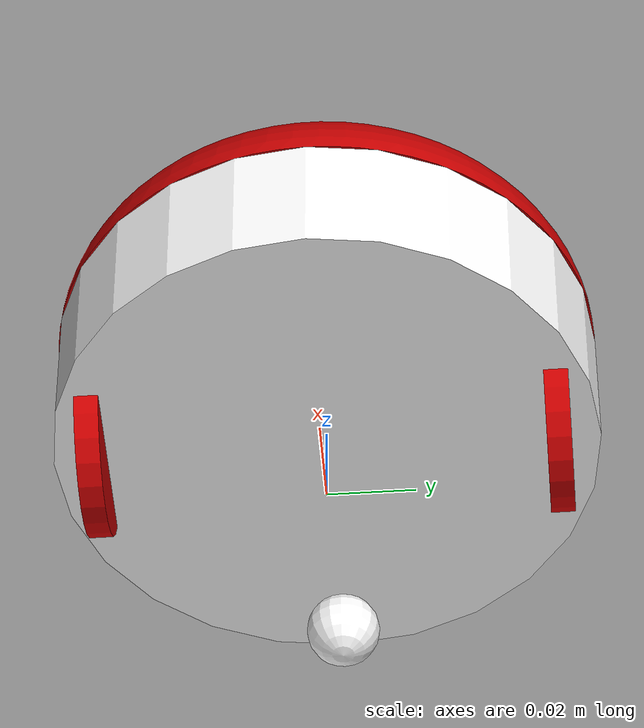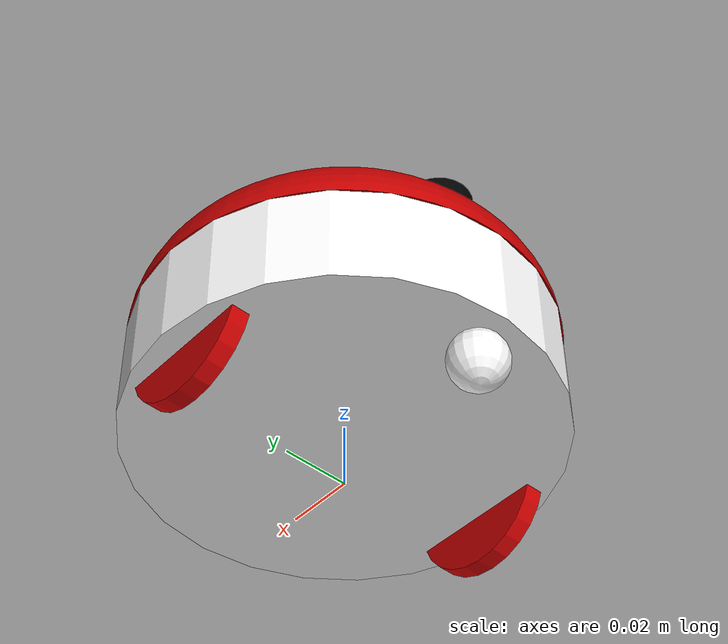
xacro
<?xml version="1.0" ?>
<robot name="makerspet_mini" xmlns:xacro="http://ros.org/wiki/xacro">
  <xacro:include filename="params.xacro" />
  <xacro:include filename="inertial.xacro" />
  <xacro:include filename="plugins.xacro" />
  <xacro:include filename="materials.xacro" />

  <link name="base_footprint"/>

  <joint name="base_joint" type="fixed">
    <parent link="base_footprint"/>
    <child link="base_link"/>
    <origin xyz="0 0 ${floor_clearance}" rpy="0 0 0"/>
  </joint>

  <link name="base_link">
    <visual>
      <origin xyz="0 0 ${lower_cylinder_height/2}" rpy="0 0 0"/>
      <geometry>
        <cylinder length="${lower_cylinder_height}" radius="${base_diameter/2}"/>
      </geometry>
      <material name="white"/>
    </visual>

    <collision>
      <origin xyz="0 0 ${lower_cylinder_height/2}" rpy="0 0 0"/>
      <geometry>
        <cylinder length="${lower_cylinder_height}" radius="${base_diameter/2}"/>
      </geometry>
    </collision>

    <xacro:solid_cylinder_inertia m="${lower_cylinder_mass}" r="${base_diameter/2}" h="${lower_cylinder_height}"/>
  </link>

  <joint name="caster_joint" type="fixed">
    <parent link="base_link"/>
    <child link="caster_link"/>
    <origin xyz="${caster_inset-base_diameter/2} 0 ${caster_diameter/2-floor_clearance}" rpy="0 0 0"/>
  </joint>

  <link name="caster_link">
    <visual>
      <origin xyz="0 0 0" rpy="0 0 0"/>
      <geometry>
        <sphere radius="${caster_diameter/2}"/>
      </geometry>
      <material name="white"/>
    </visual>

   <collision>
      <origin xyz="0 0 0" rpy="0 0 0"/>
      <geometry>
        <sphere radius="${caster_diameter/2}"/>
      </geometry>
    </collision>

    <xacro:solid_sphere_inertia m="${caster_mass}" r="${caster_diameter/2}"/>
  </link>

  <joint name="wheel_left_joint" type="continuous">
    <parent link="base_link"/>
    <child link="wheel_left_link"/>
    <origin xyz="0 ${wheel_base/2} ${wheel_diameter/2-floor_clearance}" rpy="-${pi/2} 0 0"/>
    <axis xyz="0 0 1">
      <limit>
        <effort>${motor_stall_torque}</effort>
      </limit>
    </axis>
  </joint>

  <link name="wheel_left_link">
    <visual>
      <origin xyz="0 0 0" rpy="0 0 0"/>
      <geometry>
        <cylinder length="${wheel_width}" radius="${wheel_diameter/2}"/>
      </geometry>
      <material name="red"/>
    </visual>

    <collision>
      <origin xyz="0 0 0" rpy="0 0 0"/>
      <geometry>
        <cylinder length="${wheel_width}" radius="${wheel_diameter/2}"/>
      </geometry>
    </collision>

    <xacro:solid_cylinder_inertia m="${wheel_mass}" r="${wheel_diameter/2}" h="${wheel_width}"/>
  </link>

  <joint name="wheel_right_joint" type="continuous">
    <parent link="base_link"/>
    <child link="wheel_right_link"/>
    <origin xyz="0 ${-wheel_base/2} ${wheel_diameter/2-floor_clearance}" rpy="-${pi/2} 0 0"/>
    <axis xyz="0 0 1">
      <limit>
        <effort>${motor_stall_torque}</effort>
      </limit>
    </axis>
  </joint>

  <link name="wheel_right_link">
    <visual>
      <origin xyz="0 0 0" rpy="0 0 0"/>
      <geometry>
        <cylinder length="${wheel_width}" radius="${wheel_diameter/2}"/>
      </geometry>
      <material name="red"/>
    </visual>

    <collision>
      <origin xyz="0 0 0" rpy="0 0 0"/>
      <geometry>
        <cylinder length="${wheel_width}" radius="${wheel_diameter/2}"/>
      </geometry>
    </collision>

    <xacro:solid_cylinder_inertia m="${wheel_mass}" r="${wheel_diameter/2}" h="${wheel_width}"/>
  </link>

  <joint name="scan_joint" type="fixed">
    <parent link="base_link"/>
    <child link="base_scan"/>
    <origin xyz="${lidar_center_offset} 0 ${lower_cylinder_height + laser_puck_offset}" rpy="0 -${pi} 0"/>
  </joint>

  <link name="base_scan">
    <visual>
      <origin xyz="0 0 0" rpy="0 0 0"/>
      <geometry>
        <cylinder length="${laser_puck_height}" radius="${laser_puck_diameter/2}"/>
      </geometry>
      <material name="black"/>
    </visual>

    <collision>
      <origin xyz="0 0 0" rpy="0 0 0"/>
      <geometry>
        <cylinder length="${laser_puck_height}" radius="${laser_puck_diameter/2}"/>
      </geometry>
    </collision>

    <xacro:solid_cylinder_inertia m="${laser_puck_mass}" r="${laser_puck_diameter/2}" h="${laser_puck_height}"/>
  </link>

  <joint name="scan_motor_joint" type="fixed">
    <parent link="base_scan"/>
    <child link="scan_motor"/>
    <origin xyz="${lidar_motor_x_offset} 0 ${lidar_motor_z_offset}" rpy="0 -${pi} 0"/>
  </joint>

  <link name="scan_motor">
    <visual>
      <origin xyz="0 0 0" rpy="0 0 0"/>
      <geometry>
        <cylinder length="${laser_motor_height}" radius="${laser_motor_diameter/2}"/>
      </geometry>
      <material name="black"/>
    </visual>

    <collision>
      <origin xyz="0 0 0" rpy="0 0 0"/>
      <geometry>
        <cylinder length="${laser_motor_height}" radius="${laser_motor_diameter/2}"/>
      </geometry>
    </collision>

    <xacro:solid_cylinder_inertia m="${laser_motor_mass}" r="${laser_motor_diameter/2}" h="${laser_motor_height}"/>
  </link>

  <joint name="head_joint" type="fixed">
    <parent link="base_link"/>
    <child link="head_link"/>
    <origin xyz="0 0 ${lower_cylinder_height}" rpy="0 0 0"/>
  </joint>

  <link name="head_link">
    <visual>
      <origin xyz="0 0 0" rpy="0 0 0"/>
      <geometry>
        <mesh filename="package://makerspet_mini/mesh/hemisphere.stl" scale="${0.001*base_diameter} ${0.001*base_diameter} ${0.001*head_height*2}"/>
      </geometry>
      <material name="red"/>
    </visual>

    <collision>
      <origin xyz="0 0 ${head_height/2}" rpy="0 0 0"/>
      <geometry>
        <cylinder length="${head_height}" radius="${base_diameter/2}"/>
      </geometry>
    </collision>

    <xacro:solid_semi_ellipsoid_inertia m="${head_mass}" x="${base_diameter/2}" y="${base_diameter/2}" z="${head_height}"/>
  </link>

</robot>

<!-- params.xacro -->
<robot xmlns:xacro="http://ros.org/wiki/xacro">
  <!-- ****************** ROBOT DIMENSIONS ****************** -->
  <!-- Units: meters, degrees, kg, N*m, m/s2 -->
  <xacro:property name="wheel_diameter" value="0.043"/>
  <xacro:property name="wheel_width" value="0.0055"/>
  <xacro:property name="caster_diameter" value="0.017"/>
  <!-- Caster center to base edge -->
  <xacro:property name="caster_inset" value="0.011"/>
  <xacro:property name="floor_clearance" value="0.0149"/>
  <xacro:property name="base_diameter" value="0.124"/>
  <xacro:property name="wheel_base" value="0.105043"/>
  <xacro:property name="lower_cylinder_height" value="0.032"/>
  <xacro:property name="laser_puck_height" value="0.016"/>
  <xacro:property name="laser_puck_diameter" value="0.06"/>
  <xacro:property name="laser_puck_offset" value="0.0384"/>
  <xacro:property name="laser_motor_diameter" value="0.02"/>
  <xacro:property name="lidar_motor_x_offset" value="0.04"/>
  <xacro:property name="lidar_motor_z_offset" value="0.012"/>
  <xacro:property name="laser_motor_height" value="0.01"/>
  <xacro:property name="head_height" value="0.0388"/>
  <xacro:property name="lidar_center_offset" value="0.000"/>

  <xacro:property name="motor_stall_torque" value="0.171616375"/>
  <xacro:property name="max_linear_acceleration" value="1"/>
  <xacro:property name="lower_cylinder_mass" value="0.250"/>
  <!-- caster and battery weight -->
  <xacro:property name="caster_mass" value="0.050"/>
  <xacro:property name="wheel_mass" value="0.050"/>
  <xacro:property name="laser_puck_mass" value="0.150"/>
  <xacro:property name="laser_motor_mass" value="0.050"/>
  <xacro:property name="head_mass" value="0.200"/>

  <xacro:property name="DEG2RAD" value="0.0174533"/>
</robot>

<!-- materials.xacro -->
<robot xmlns:xacro="http://ros.org/wiki/xacro">

  <material name="black">
      <color rgba="0.0 0.0 0.0 1.0"/>
  </material>

  <material name="dark">
    <color rgba="0.3 0.3 0.3 1.0"/>
  </material>

  <material name="light_black">
    <color rgba="0.4 0.4 0.4 1.0"/>
  </material>

  <material name="blue">
    <color rgba="0.0 0.0 0.8 1.0"/>
  </material>

  <material name="green">
    <color rgba="0.0 0.8 0.0 1.0"/>
  </material>

  <material name="grey">
    <color rgba="0.5 0.5 0.5 1.0"/>
  </material>

  <material name="orange">
    <color rgba="1.0 0.4235 0.0392 1.0"/>
  </material>

  <material name="brown">
    <color rgba="0.8706 0.8118 0.7647 1.0"/>
  </material>

  <material name="red">
    <color rgba="0.8 0.0 0.0 1.0"/>
  </material>

  <material name="white">
    <color rgba="1.0 1.0 1.0 1.0"/>
  </material>

  <gazebo reference="wheel_left_link">
    <mu1>0.2</mu1>
    <mu2>0.2</mu2>
    <visual>
      <material>
        <ambient>0.8 0 0 1</ambient>
        <diffuse>0.8 0 0 1</diffuse>
        <specular>0.8 0 0 1</specular>
      </material>
    </visual>
  </gazebo>

  <gazebo reference="wheel_right_link">
    <mu1>0.2</mu1>
    <mu2>0.2</mu2>
    <visual>
      <material>
        <ambient>0.8 0 0 1</ambient>
        <diffuse>0.8 0 0 1</diffuse>
        <specular>0.8 0 0 1</specular>
      </material>
    </visual>
  </gazebo>

  <gazebo reference="caster_link">
    <mu1>0.2</mu1>
    <mu2>0.2</mu2>
    <visual>
      <material>
        <ambient>1 1 1 1</ambient>
        <diffuse>1 1 1 1</diffuse>
        <specular>1 1 1 1</specular>
      </material>
    </visual>
  </gazebo>

  <gazebo reference="head_link">
    <visual>
      <material>
        <ambient>0.8 0 0 1</ambient>
        <diffuse>0.8 0 0 1</diffuse>
        <specular>0.8 0 0 1</specular>
      </material>
    </visual>
  </gazebo>

  <gazebo reference="base_link">
    <visual>
      <material>
        <ambient>1 1 1 1</ambient>
        <diffuse>1 1 1 1</diffuse>
        <specular>1 1 1 1</specular>
      </material>
    </visual>
  </gazebo>

  <gazebo reference="base_scan">
    <visual>
      <material>
        <ambient>0 0 0 1</ambient>
        <diffuse>0 0 0 1</diffuse>
        <specular>0 0 0 1</specular>
      </material>
    </visual>
  </gazebo>

</robot>
